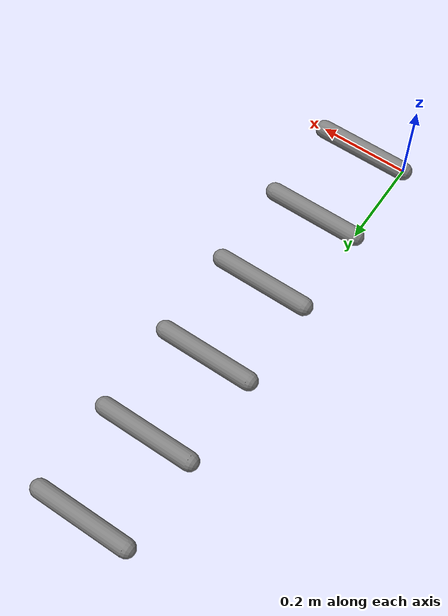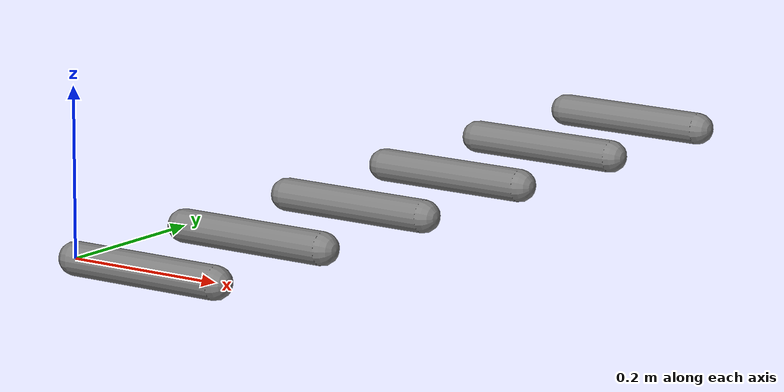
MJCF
<mujoco model="all_eq_fric">
  <worldbody>
    <body name="arm1" pos="0 0 0">
      <joint name="j1" type="hinge" axis="0 1 0" frictionloss="0.5"/>
      <inertial mass="0.5" pos="0.1 0 0" diaginertia="0.01 0.01 0.01"/>
      <geom type="capsule" fromto="0 0 0 0.2 0 0" size="0.02" contype="0" conaffinity="0"/>
    </body>
    <body name="arm2" pos="0 0.2 0">
      <joint name="j2" type="hinge" axis="0 1 0"/>
      <inertial mass="0.5" pos="0.1 0 0" diaginertia="0.01 0.01 0.01"/>
      <geom type="capsule" fromto="0 0 0 0.2 0 0" size="0.02" contype="0" conaffinity="0"/>
    </body>
    <body name="arm3" pos="0 0.4 0">
      <joint name="j3" type="hinge" axis="0 1 0"/>
      <inertial mass="0.5" pos="0.1 0 0" diaginertia="0.01 0.01 0.01"/>
      <geom type="capsule" fromto="0 0 0 0.2 0 0" size="0.02" contype="0" conaffinity="0"/>
    </body>
    <body name="arm4" pos="0 0.6 0">
      <joint name="j4" type="hinge" axis="0 1 0"/>
      <inertial mass="0.5" pos="0.1 0 0" diaginertia="0.01 0.01 0.01"/>
      <geom type="capsule" fromto="0 0 0 0.2 0 0" size="0.02" contype="0" conaffinity="0"/>
    </body>
    <body name="arm5" pos="0 0.8 0">
      <joint name="j5" type="hinge" axis="0 1 0"/>
      <inertial mass="0.5" pos="0.1 0 0" diaginertia="0.01 0.01 0.01"/>
      <geom type="capsule" fromto="0 0 0 0.2 0 0" size="0.02" contype="0" conaffinity="0"/>
    </body>
    <body name="arm6" pos="0 1.0 0">
      <joint name="j6" type="hinge" axis="0 1 0"/>
      <inertial mass="0.5" pos="0.1 0 0" diaginertia="0.01 0.01 0.01"/>
      <geom type="capsule" fromto="0 0 0 0.2 0 0" size="0.02" contype="0" conaffinity="0"/>
    </body>
  </worldbody>
  <equality>
    <joint joint1="j1" joint2="j2" polycoef="0 1 0 0 0" solimp="0.95 0.99 0.001" solref="0.005 1"/>
    <connect body1="arm3" body2="arm4" anchor="0.2 0 0" solimp="0.95 0.99 0.001" solref="0.005 1"/>
    <weld body1="arm5" body2="arm6" relpose="0 -0.2 0 1 0 0 0" solimp="0.95 0.99 0.001" solref="0.005 1"/>
  </equality>
</mujoco>
